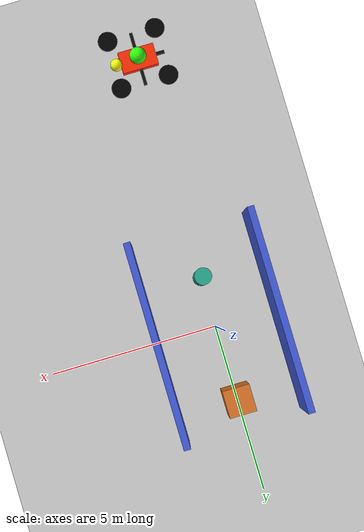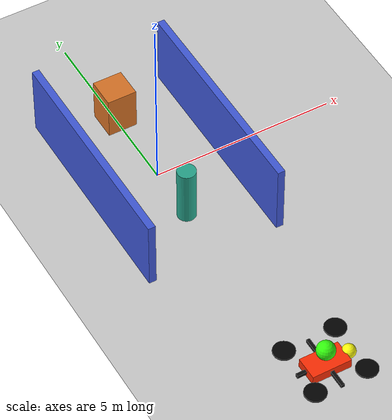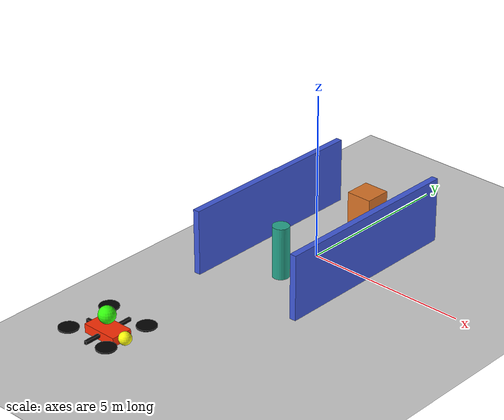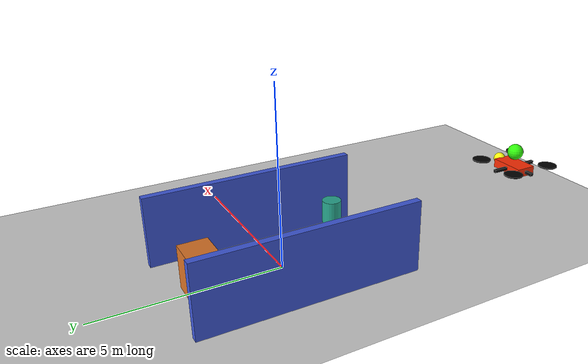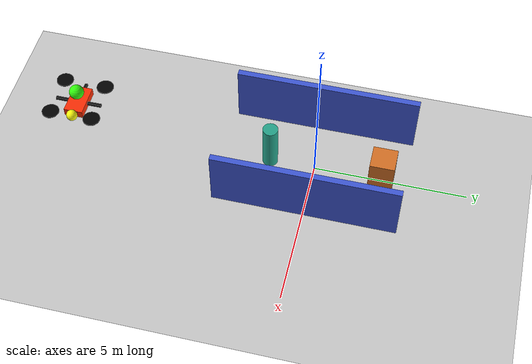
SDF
<?xml version="1.0" ?>
<sdf version="1.6">
  <world name="fuel_office_aligned">
    <include>
      <uri>model://sun</uri>
    </include>
    <include>
      <uri>model://ground_plane</uri>
    </include>

    <model name="left_wall">
      <static>true</static>
      <pose>-1.8 0.0 1.0 0 0 0</pose>
      <link name="link">
        <collision name="collision">
          <geometry><box><size>0.2 6.0 2.0</size></box></geometry>
        </collision>
        <visual name="visual">
          <geometry><box><size>0.2 6.0 2.0</size></box></geometry>
          <material>
            <ambient>0.25 0.35 0.85 1</ambient>
            <diffuse>0.25 0.35 0.85 1</diffuse>
          </material>
        </visual>
      </link>
    </model>

    <model name="right_wall">
      <static>true</static>
      <pose>1.8 0.0 1.0 0 0 0</pose>
      <link name="link">
        <collision name="collision">
          <geometry><box><size>0.2 6.0 2.0</size></box></geometry>
        </collision>
        <visual name="visual">
          <geometry><box><size>0.2 6.0 2.0</size></box></geometry>
          <material>
            <ambient>0.25 0.35 0.85 1</ambient>
            <diffuse>0.25 0.35 0.85 1</diffuse>
          </material>
        </visual>
      </link>
    </model>

    <model name="front_box">
      <static>true</static>
      <pose>0.0 2.2 0.6 0 0 0</pose>
      <link name="link">
        <collision name="collision">
          <geometry><box><size>0.8 0.8 1.2</size></box></geometry>
        </collision>
        <visual name="visual">
          <geometry><box><size>0.8 0.8 1.2</size></box></geometry>
          <material>
            <ambient>0.85 0.45 0.15 1</ambient>
            <diffuse>0.85 0.45 0.15 1</diffuse>
          </material>
        </visual>
      </link>
    </model>

    <model name="pillar">
      <static>true</static>
      <pose>0.0 -1.5 0.8 0 0 0</pose>
      <link name="link">
        <collision name="collision">
          <geometry><cylinder><radius>0.25</radius><length>1.6</length></cylinder></geometry>
        </collision>
        <visual name="visual">
          <geometry><cylinder><radius>0.25</radius><length>1.6</length></cylinder></geometry>
          <material>
            <ambient>0.15 0.65 0.55 1</ambient>
            <diffuse>0.15 0.65 0.55 1</diffuse>
          </material>
        </visual>
      </link>
    </model>

    <include>
      <name>fuel_simple_uav</name>
      <uri>model://simple_uav</uri>
      <pose>0.0 -8.0 1.2 0 0 0</pose>
    </include>
  </world>
</sdf>

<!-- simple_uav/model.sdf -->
<sdf version="1.6">
  <model name="simple_uav">
    <static>false</static>
    <link name="base_link">
      <pose>0 0 0 0 0 0</pose>
      <gravity>false</gravity>
      <kinematic>true</kinematic>
      <inertial>
        <mass>0.2</mass>
        <inertia><ixx>0.004</ixx><iyy>0.004</iyy><izz>0.008</izz></inertia>
      </inertial>
      <collision name="body_collision">
        <geometry><box><size>0.32 0.22 0.10</size></box></geometry>
      </collision>
      <visual name="body_visual">
        <geometry><box><size>1.05 0.62 0.26</size></box></geometry>
        <material>
          <ambient>1.00 0.18 0.02 1</ambient>
          <diffuse>1.00 0.18 0.02 1</diffuse>
        </material>
      </visual>
      <visual name="front_sensor_visual">
        <pose>0.64 0 0.05 0 0 0</pose>
        <geometry><sphere><radius>0.18</radius></sphere></geometry>
        <material>
          <ambient>1.00 1.00 0.05 1</ambient>
          <diffuse>1.00 1.00 0.05 1</diffuse>
        </material>
      </visual>
      <visual name="high_visibility_beacon">
        <pose>0 0 0.48 0 0 0</pose>
        <geometry><sphere><radius>0.24</radius></sphere></geometry>
        <material>
          <ambient>0.20 1.00 0.05 1</ambient>
          <diffuse>0.20 1.00 0.05 1</diffuse>
          <emissive>0.20 1.00 0.05 1</emissive>
        </material>
      </visual>
      <visual name="arm_x_visual">
        <geometry><box><size>1.55 0.09 0.09</size></box></geometry>
        <material>
          <ambient>0.05 0.05 0.05 1</ambient>
          <diffuse>0.05 0.05 0.05 1</diffuse>
        </material>
      </visual>
      <visual name="arm_y_visual">
        <geometry><box><size>0.09 1.55 0.09</size></box></geometry>
        <material>
          <ambient>0.05 0.05 0.05 1</ambient>
          <diffuse>0.05 0.05 0.05 1</diffuse>
        </material>
      </visual>
      <visual name="rotor_front_right">
        <pose>0.70 0.70 0.13 0 0 0</pose>
        <geometry><cylinder><radius>0.28</radius><length>0.035</length></cylinder></geometry>
        <material><ambient>0.01 0.01 0.01 1</ambient><diffuse>0.01 0.01 0.01 1</diffuse></material>
      </visual>
      <visual name="rotor_front_left">
        <pose>0.70 -0.70 0.13 0 0 0</pose>
        <geometry><cylinder><radius>0.28</radius><length>0.035</length></cylinder></geometry>
        <material><ambient>0.01 0.01 0.01 1</ambient><diffuse>0.01 0.01 0.01 1</diffuse></material>
      </visual>
      <visual name="rotor_rear_right">
        <pose>-0.70 0.70 0.13 0 0 0</pose>
        <geometry><cylinder><radius>0.28</radius><length>0.035</length></cylinder></geometry>
        <material><ambient>0.01 0.01 0.01 1</ambient><diffuse>0.01 0.01 0.01 1</diffuse></material>
      </visual>
      <visual name="rotor_rear_left">
        <pose>-0.70 -0.70 0.13 0 0 0</pose>
        <geometry><cylinder><radius>0.28</radius><length>0.035</length></cylinder></geometry>
        <material><ambient>0.01 0.01 0.01 1</ambient><diffuse>0.01 0.01 0.01 1</diffuse></material>
      </visual>
    </link>
  </model>
</sdf>
